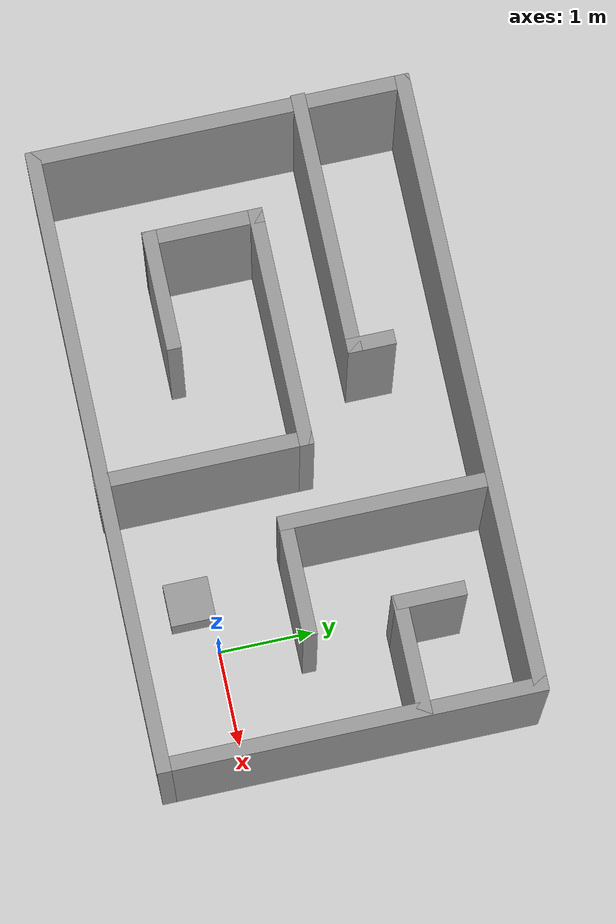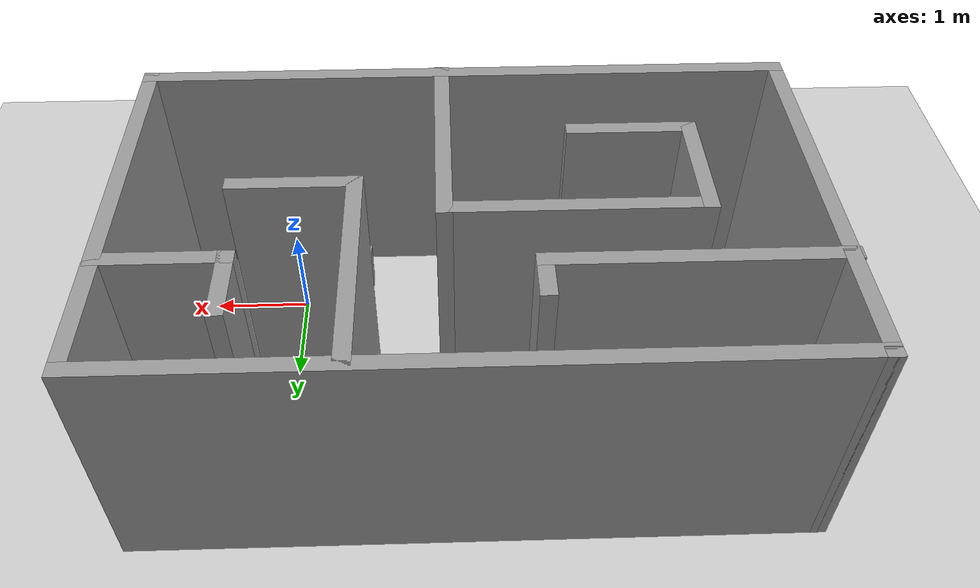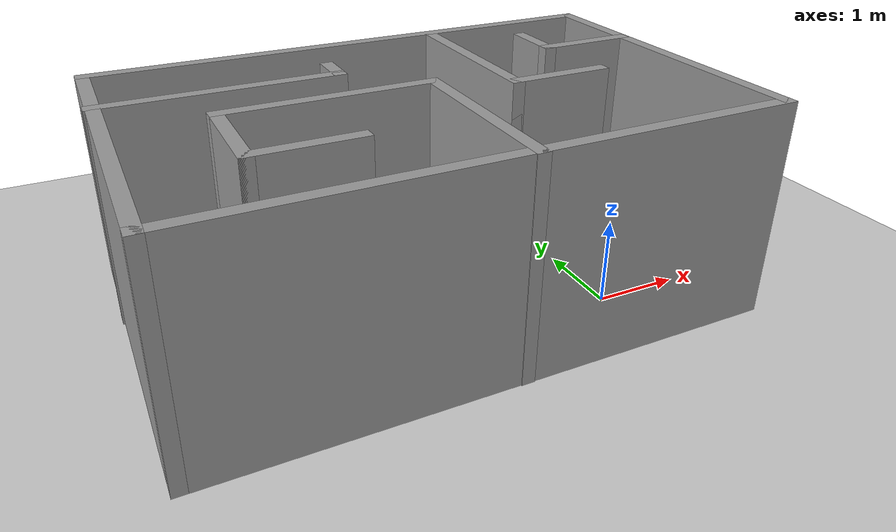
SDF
<sdf version="1.7">
 <world name="default">
  <light name="sun" type="directional">
   <pose>0 0 10 0 -0 0</pose>
   <diffuse>0.8 0.8 0.8 1</diffuse>
   <specular>0.2 0.2 0.2 1</specular>
   <attenuation>
    <range>1000</range>
    <constant>0.9</constant>
    <linear>0.01</linear>
    <quadratic>0.001</quadratic>
   </attenuation>
   <direction>-0.5 0.1 -0.9</direction>
   <spot><inner_angle>0</inner_angle><outer_angle>0</outer_angle><falloff>0</falloff></spot>
  </light>
  <model name="ground_plane">
   <static>1</static>
   <link name="link">
    <collision name="collision">
     <geometry><plane><normal>0 0 1</normal><size>100 100</size></plane></geometry>
     <surface>
      <contact><collide_bitmask>65535</collide_bitmask></contact>
      <friction><ode><mu>100</mu><mu2>50</mu2></ode></friction>
     </surface>
    </collision>
    <visual name="visual">
     <cast_shadows>0</cast_shadows>
     <geometry><plane><normal>0 0 1</normal><size>100 100</size></plane></geometry>
     <material>
      <script><uri>file://media/materials/scripts/gazebo.material</uri><name>Gazebo/Grey</name></script>
     </material>
    </visual>
   </link>
  </model>
  <gravity>0 0 -9.8</gravity>
  <magnetic_field>6e-06 2.3e-05 -4.2e-05</magnetic_field>
  <atmosphere type="adiabatic"/>
  <physics type="ode">
   <max_step_size>0.001</max_step_size>
   <real_time_factor>1</real_time_factor>
   <real_time_update_rate>1000</real_time_update_rate>
  </physics>
  <scene><ambient>0.4 0.4 0.4 1</ambient><background>0.7 0.7 0.7 1</background><shadows>1</shadows></scene>
  <audio><device>default</device></audio>
  <spherical_coordinates>
   <surface_model>EARTH_WGS84</surface_model>
   <latitude_deg>0</latitude_deg>
   <longitude_deg>0</longitude_deg>
   <elevation>0</elevation>
   <heading_deg>0</heading_deg>
  </spherical_coordinates>
  <model name="room">
   <pose>-1.82017 1.60088 0 0 -0 0</pose>
   <link name="Wall_10">
    <collision name="Wall_10_Collision">
     <geometry><box><size>6.5 0.15 2.5</size></box></geometry>
     <pose>0 0 1.25 0 -0 0</pose>
    </collision>
    <visual name="Wall_10_Visual">
     <pose>0 0 1.25 0 -0 0</pose>
     <geometry><box><size>6.5 0.15 2.5</size></box></geometry>
     <material>
      <script><uri>file://media/materials/scripts/gazebo.material</uri><name>Gazebo/Grey</name></script>
      <ambient>1 1 1 1</ambient>
     </material>
     <meta><layer>0</layer></meta>
    </visual>
    <pose>0.01 1.4125 0 0 -0 0</pose>
   </link>
   <link name="Wall_11">
    <collision name="Wall_11_Collision">
     <geometry><box><size>4 0.15 2.5</size></box></geometry>
     <pose>0 0 1.25 0 -0 0</pose>
    </collision>
    <visual name="Wall_11_Visual">
     <pose>0 0 1.25 0 -0 0</pose>
     <geometry><box><size>4 0.15 2.5</size></box></geometry>
     <material>
      <script><uri>file://media/materials/scripts/gazebo.material</uri><name>Gazebo/Grey</name></script>
      <ambient>1 1 1 1</ambient>
     </material>
     <meta><layer>0</layer></meta>
    </visual>
    <pose>3.185 -0.5125 0 0 -0 -1.5708</pose>
   </link>
   <link name="Wall_12">
    <collision name="Wall_12_Collision">
     <geometry><box><size>6.5 0.15 2.5</size></box></geometry>
     <pose>0 0 1.25 0 -0 0</pose>
    </collision>
    <visual name="Wall_12_Visual">
     <pose>0 0 1.25 0 -0 0</pose>
     <geometry><box><size>6.5 0.15 2.5</size></box></geometry>
     <material>
      <script><uri>file://media/materials/scripts/gazebo.material</uri><name>Gazebo/Grey</name></script>
      <ambient>1 1 1 1</ambient>
     </material>
     <meta><layer>0</layer></meta>
    </visual>
    <pose>0.01 -2.4375 0 0 -0 3.14159</pose>
   </link>
   <link name="Wall_13">
    <collision name="Wall_13_Collision">
     <geometry><box><size>4 0.15 2.5</size></box></geometry>
     <pose>0 0 1.25 0 -0 0</pose>
    </collision>
    <visual name="Wall_13_Visual">
     <pose>0 0 1.25 0 -0 0</pose>
     <geometry><box><size>4 0.15 2.5</size></box></geometry>
     <material>
      <script><uri>file://media/materials/scripts/gazebo.material</uri><name>Gazebo/Grey</name></script>
      <ambient>1 1 1 1</ambient>
     </material>
     <meta><layer>0</layer></meta>
    </visual>
    <pose>-3.165 -0.5125 0 0 -0 1.5708</pose>
   </link>
   <link name="Wall_16">
    <collision name="Wall_16_Collision">
     <geometry><box><size>0.5 0.15 2.5</size></box></geometry>
     <pose>0 0 1.25 0 -0 0</pose>
    </collision>
    <visual name="Wall_16_Visual">
     <pose>0 0 1.25 0 -0 0</pose>
     <geometry><box><size>0.5 0.15 2.5</size></box></geometry>
     <material>
      <script><uri>file://media/materials/scripts/gazebo.material</uri><name>Gazebo/Grey</name></script>
      <ambient>1 1 1 1</ambient>
     </material>
     <meta><layer>0</layer></meta>
    </visual>
    <pose>-0.585 0.5075 0 0 -0 1.5708</pose>
   </link>
   <link name="Wall_18">
    <collision name="Wall_18_Collision">
     <geometry><box><size>2.75 0.15 2.5</size></box></geometry>
     <pose>0 0 1.25 0 -0 0</pose>
    </collision>
    <visual name="Wall_18_Visual">
     <pose>0 0 1.25 0 -0 0</pose>
     <geometry><box><size>2.75 0.15 2.5</size></box></geometry>
     <material>
      <script><uri>file://media/materials/scripts/gazebo.material</uri><name>Gazebo/Grey</name></script>
      <ambient>1 1 1 1</ambient>
     </material>
     <meta><layer>0</layer></meta>
    </visual>
    <pose>-1.885 0.3325 0 0 -0 3.14159</pose>
   </link>
   <link name="Wall_20">
    <collision name="Wall_20_Collision">
     <geometry><box><size>2.25 0.15 2.5</size></box></geometry>
     <pose>0 0 1.25 0 -0 0</pose>
    </collision>
    <visual name="Wall_20_Visual">
     <pose>0 0 1.25 0 -0 0</pose>
     <geometry><box><size>2.25 0.15 2.5</size></box></geometry>
     <material>
      <script><uri>file://media/materials/scripts/gazebo.material</uri><name>Gazebo/Grey</name></script>
      <ambient>1 1 1 1</ambient>
     </material>
     <meta><layer>0</layer></meta>
    </visual>
    <pose>0.245 -1.3975 0 0 -0 1.5708</pose>
   </link>
   <link name="Wall_21">
    <collision name="Wall_21_Collision">
     <geometry><box><size>2.5 0.15 2.5</size></box></geometry>
     <pose>0 0 1.25 0 -0 0</pose>
    </collision>
    <visual name="Wall_21_Visual">
     <pose>0 0 1.25 0 -0 0</pose>
     <geometry><box><size>2.5 0.15 2.5</size></box></geometry>
     <material>
      <script><uri>file://media/materials/scripts/gazebo.material</uri><name>Gazebo/Grey</name></script>
      <ambient>1 1 1 1</ambient>
     </material>
     <meta><layer>0</layer></meta>
    </visual>
    <pose>-0.93 -0.3475 0 0 -0 3.14159</pose>
   </link>
   <link name="Wall_22">
    <collision name="Wall_22_Collision">
     <geometry><box><size>1.25 0.15 2.5</size></box></geometry>
     <pose>0 0 1.25 0 -0 0</pose>
    </collision>
    <visual name="Wall_22_Visual">
     <pose>0 0 1.25 0 -0 0</pose>
     <geometry><box><size>1.25 0.15 2.5</size></box></geometry>
     <material>
      <script><uri>file://media/materials/scripts/gazebo.material</uri><name>Gazebo/Grey</name></script>
      <ambient>1 1 1 1</ambient>
     </material>
     <meta><layer>0</layer></meta>
    </visual>
    <pose>-2.105 -0.8975 0 0 -0 -1.5708</pose>
   </link>
   <link name="Wall_23">
    <collision name="Wall_23_Collision">
     <geometry><box><size>1.25 0.15 2.5</size></box></geometry>
     <pose>0 0 1.25 0 -0 0</pose>
    </collision>
    <visual name="Wall_23_Visual">
     <pose>0 0 1.25 0 -0 0</pose>
     <geometry><box><size>1.25 0.15 2.5</size></box></geometry>
     <material>
      <script><uri>file://media/materials/scripts/gazebo.material</uri><name>Gazebo/Grey</name></script>
      <ambient>1 1 1 1</ambient>
     </material>
     <meta><layer>0</layer></meta>
    </visual>
    <pose>-1.555 -1.4475 0 0 -0 0</pose>
   </link>
   <link name="Wall_25">
    <collision name="Wall_25_Collision">
     <geometry><box><size>2.25 0.15 2.5</size></box></geometry>
     <pose>0 0 1.25 0 -0 0</pose>
    </collision>
    <visual name="Wall_25_Visual">
     <pose>0 0 1.25 0 -0 0</pose>
     <geometry><box><size>2.25 0.15 2.5</size></box></geometry>
     <material>
      <script><uri>file://media/materials/scripts/gazebo.material</uri><name>Gazebo/Grey</name></script>
      <ambient>1 1 1 1</ambient>
     </material>
     <meta><layer>0</layer></meta>
    </visual>
    <pose>1.045 0.3225 0 0 -0 -1.5708</pose>
   </link>
   <link name="Wall_26">
    <collision name="Wall_26_Collision">
     <geometry><box><size>1.25 0.15 2.5</size></box></geometry>
     <pose>0 0 1.25 0 -0 0</pose>
    </collision>
    <visual name="Wall_26_Visual">
     <pose>0 0 1.25 0 -0 0</pose>
     <geometry><box><size>1.25 0.15 2.5</size></box></geometry>
     <material>
      <script><uri>file://media/materials/scripts/gazebo.material</uri><name>Gazebo/Grey</name></script>
      <ambient>1 1 1 1</ambient>
     </material>
     <meta><layer>0</layer></meta>
    </visual>
    <pose>1.595 -0.7275 0 0 -0 0</pose>
   </link>
   <link name="Wall_28">
    <collision name="Wall_28_Collision">
     <geometry><box><size>1.25 0.15 2.5</size></box></geometry>
     <pose>0 0 1.25 0 -0 0</pose>
    </collision>
    <visual name="Wall_28_Visual">
     <pose>0 0 1.25 0 -0 0</pose>
     <geometry><box><size>1.25 0.15 2.5</size></box></geometry>
     <material>
      <script><uri>file://media/materials/scripts/gazebo.material</uri><name>Gazebo/Grey</name></script>
      <ambient>1 1 1 1</ambient>
     </material>
     <meta><layer>0</layer></meta>
    </visual>
    <pose>2.625 0.2225 0 0 -0 3.14159</pose>
   </link>
   <link name="Wall_29">
    <collision name="Wall_29_Collision">
     <geometry><box><size>0.75 0.15 2.5</size></box></geometry>
     <pose>0 0 1.25 0 -0 0</pose>
    </collision>
    <visual name="Wall_29_Visual">
     <pose>0 0 1.25 0 -0 0</pose>
     <geometry><box><size>0.75 0.15 2.5</size></box></geometry>
     <material>
      <script><uri>file://media/materials/scripts/gazebo.material</uri><name>Gazebo/Grey</name></script>
      <ambient>1 1 1 1</ambient>
     </material>
     <meta><layer>0</layer></meta>
    </visual>
    <pose>2.075 0.5225 0 0 -0 1.5708</pose>
   </link>
   <static>1</static>
  </model>
  <model name="unit_box">
   <pose>-0.520343 -0.203886 0.240535 0 -0 0</pose>
   <link name="link">
    <inertial>
     <mass>1</mass>
     <inertia>
      <ixx>0.166667</ixx>
      <ixy>0</ixy>
      <ixz>0</ixz>
      <iyy>0.166667</iyy>
      <iyz>0</iyz>
      <izz>0.166667</izz>
     </inertia>
    </inertial>
    <collision name="collision"><geometry><box><size>0.44852 0.475435 0.48107</size></box></geometry></collision>
    <visual name="visual">
     <geometry><box><size>0.44852 0.475435 0.48107</size></box></geometry>
     <material>
      <script><name>Gazebo/Grey</name><uri>file://media/materials/scripts/gazebo.material</uri></script>
     </material>
    </visual>
   </link>
  </model>
 </world>
</sdf>
